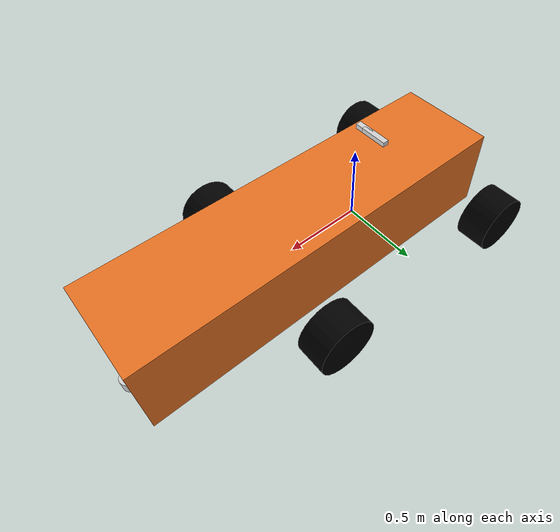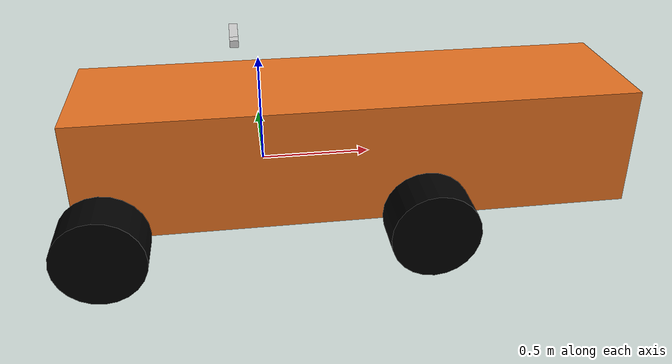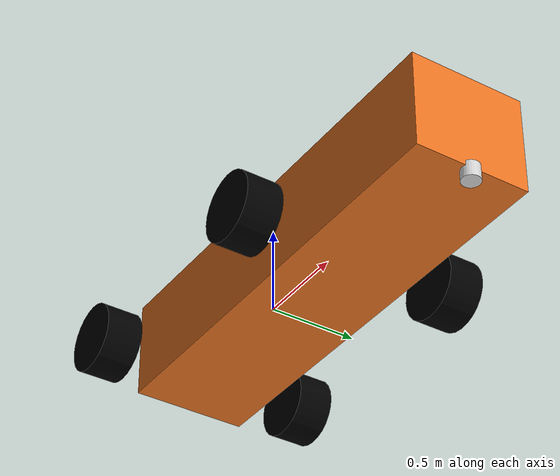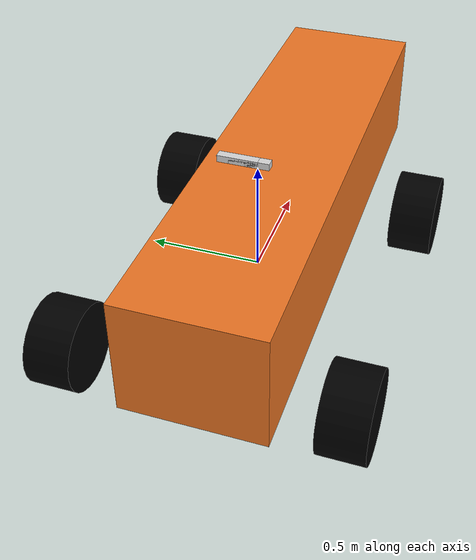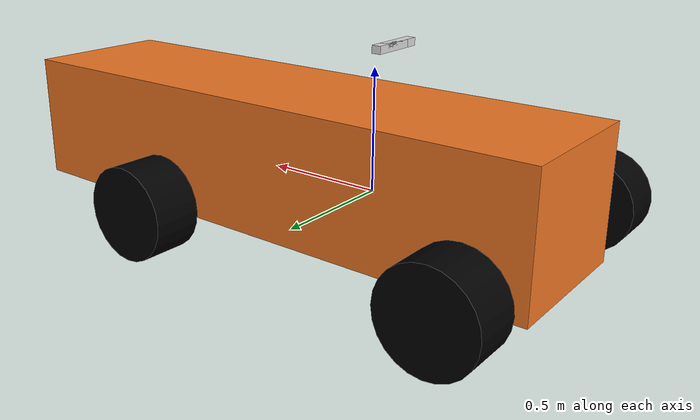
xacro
<?xml version="1.0"?>
<robot name="qev3" xmlns:xacro="http://ros.org/wiki/xacro">
    <!--                         Properties (in METERS)                      -->
    <xacro:property name="chassis_width" value="0.64" />
    <xacro:property name="chassis_length" value="2.51" />
    <xacro:property name="chassis_height" value="0.55" />

    <xacro:property name="wheel_diameter" value="0.381" />
    <xacro:property name="wheel_thickness" value="0.2" />

    <xacro:property name="velodyne_diameter" value="0.1" />
    <xacro:property name="velodyne_height" value="0.0869" />

    <xacro:property name="zed2i_width" value="0.17525" />
    <xacro:property name="zed2i_length" value="0.0373" />
    <xacro:property name="zed2i_height" value="0.03025" />

    <!--                             Materials                               -->
    <material name="chassis">
        <color rgba="0.93 0.46 0.14 1"/>
    </material>

    <material name="wheel">
        <color rgba="0 0 0 1"/>
    </material>

    <material name="sensor">
        <color rgba="0.85 0.85 0.85 1"/>
    </material>

    <!--                           Links & Joints                            -->
    <!-- Base link (chassis) -->
    <link name="car">
        <visual>
            <origin xyz="${chassis_length/6} 0 ${chassis_height/6}" rpy="0 0 0" />
            <geometry>
                <box size="${chassis_length} ${chassis_width} ${chassis_height}"/>
            </geometry>
            <material name="chassis"/>
        </visual>
    </link>

    <!-- Wheels -->
    <xacro:macro name="wheel" params="name loc">
        <!-- side is 1, -1 for left, right -->
        <!-- direction is 1, -1 for front, back -->
        <link name="${name}_wheel">
            <visual>
                <origin xyz="0 0 0" rpy="${pi/2} 0 0" />
                <geometry>
                    <cylinder radius="${wheel_diameter/2}" length="${wheel_thickness}"/>
                </geometry>
                <material name="wheel"/>
            </visual>
        </link>
        <joint name="${name}_wheel_joint" type="continuous">
            <axis xyz="0 1 0" rpy="0 0 0" />
            <parent link="car"/>
            <child link="${name}_wheel"/>
            <origin xyz="${loc}" rpy="0 0 0"/>
        </joint>
    </xacro:macro>

    <xacro:wheel name="fl" loc="0.67 -0.6 -0.05"/>
    <xacro:wheel name="fr" loc="0.67 0.6 -0.05"/>
    <xacro:wheel name="rl" loc="-0.68 -0.6 -0.05"/>
    <xacro:wheel name="rr" loc="-0.68 0.6 -0.05"/>

    <!-- Velodyne -->
    <link name="velodyne">
        <visual>
            <origin xyz="0 0 0" rpy="0 0 0" />
            <geometry>
                <cylinder radius="${velodyne_diameter/2}" length="${velodyne_height}"/>
            </geometry>
            <material name="sensor"/>
        </visual>
    </link>
    <joint name="velodyne_joint" type="fixed">
        <parent link="car"/>
        <child link="velodyne"/>
        <origin xyz="1.65 0 -0.2" rpy="0 0 0"/>
    </joint>

    <!-- ZED2i -->
    <link name="zed2i">
        <visual>
            <origin xyz="0 0 0" rpy="0 0 0" />
            <geometry>
                <box size="${zed2i_length} ${zed2i_width} ${zed2i_height}"/>
            </geometry>
            <material name="sensor"/>
        </visual>
    </link>
    <joint name="zed2i_joint" type="fixed">
        <parent link="car"/>
        <child link="zed2i"/>
        <origin xyz="-0.1 0 0.6" rpy="0 0 0"/>
    </joint>

    <link name="zed2i_left_camera_optical_frame">
        <visual>
            <origin xyz="0 0 0" rpy="0 0 0" />
            <geometry>
                <box size="${zed2i_length} ${zed2i_width} ${zed2i_height}"/>
            </geometry>
            <material name="sensor"/>
        </visual>
    </link>
    <joint name="frame_joint" type="fixed">
        <parent link="zed2i"/>
        <child link="zed2i_left_camera_optical_frame"/>
        <origin xyz="0 0.05 0" rpy="0 0 0"/>
    </joint>

</robot>
